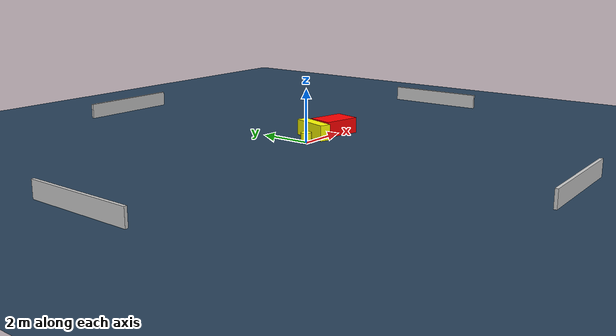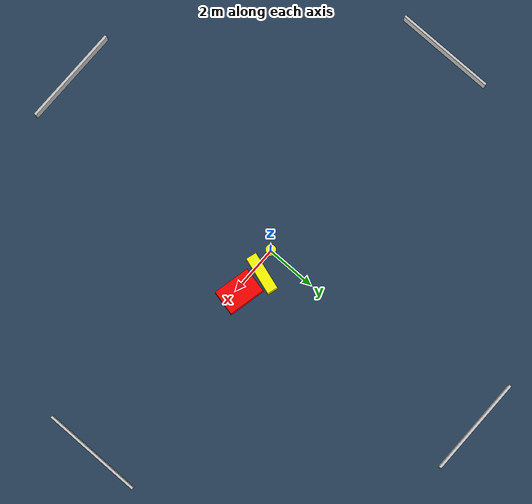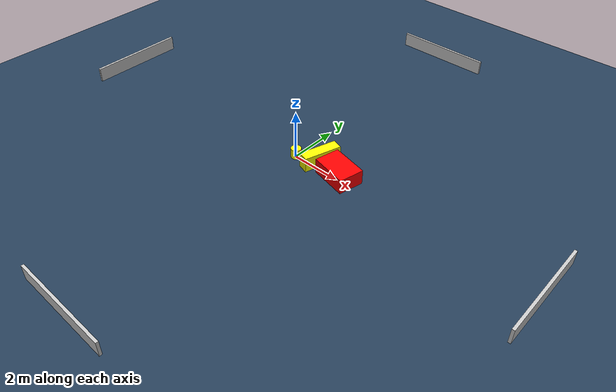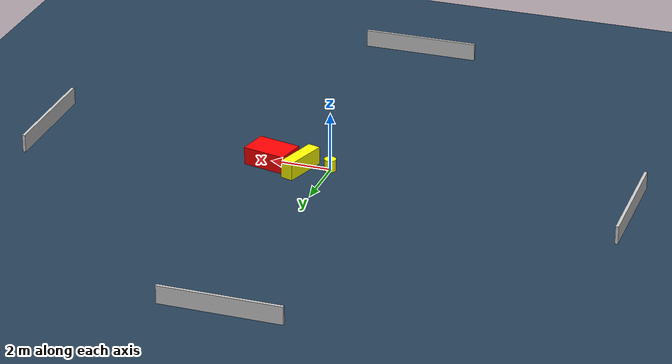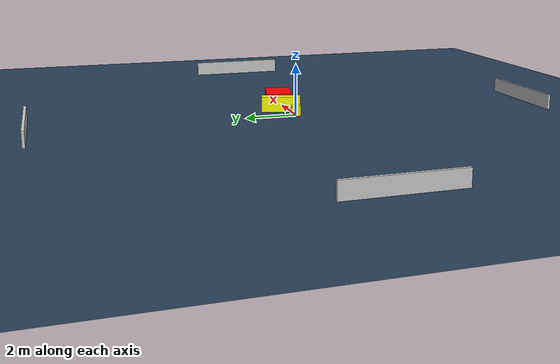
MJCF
<?xml version="1.0" ?>
<mujoco model="generated_environment">
  <option timestep="0.01" integrator="RK4" cone="elliptic"/>
  <default>
    <geom density="1"/>
  </default>
  <asset>
    <texture builtin="gradient" height="3072" name="skybox" rgb1="0.3 0.5 0.7" rgb2="0 0 0" type="skybox" width="512"/>
    <texture builtin="checker" height="300" name="groundplane" rgb1="0.2 0.3 0.4" rgb2="0.1 0.2 0.3" type="2d" width="300"/>
    <material name="groundplane" reflectance="0.2" texrepeat="5 5" texture="groundplane"/>
  </asset>
  <worldbody>
    <light dir="0 0 -1" directional="true" pos="0 0 1.5"/>
    <geom condim="3" friction="0.5 0.005 0.001" material="groundplane" name="floor" pos="0 0 0" size="0 0 0.05" type="plane"/>
    <body name="walls">
      <geom name="wall_1" condim="4" pos="-10.0 0.0 0.3" rgba="0.800000011920929 0.800000011920929 0.800000011920929 1.0" size="0.05 2.0 0.3" type="box"/>
      <geom name="wall_2" condim="4" pos="10.0 0.0 0.3" rgba="0.800000011920929 0.800000011920929 0.800000011920929 1.0" size="0.05 2.0 0.3" type="box"/>
      <geom name="wall_3" condim="4" pos="0.0 -10.0 0.3" rgba="0.800000011920929 0.800000011920929 0.800000011920929 1.0" size="2.0 0.05 0.3" type="box"/>
      <geom name="wall_4" condim="4" pos="0.0 10.0 0.3" rgba="0.800000011920929 0.800000011920929 0.800000011920929 1.0" size="2.0 0.05 0.3" type="box"/>
    </body>
    <body name="robot">
      <joint name="joint_x" type="slide" pos="0 0 0" axis="1 0 0"/>
      <joint name="joint_y" type="slide" pos="0 0 0" axis="0 1 0"/>
      <geom name="robot" type="cylinder" pos="0.0 0.0 0.2" size="0.2 0.2 0.0" mass="5.0" friction="1.0 0.005 0.0001" condim="4" rgba="1.0 1.0 0.0 1.0"/>
    </body>
    <body name="obstacle_1_movable">
      <geom name="obstacle_1_movable" condim="4" pos="0.9049929465694064 0.34408640021424025 0.3" euler="0 0 72.81338225046116" friction="0.0 0.005 0.001" rgba="1.0 1.0 0.0 1.0" size="0.7611252541642988 0.21317196456999618 0.3" type="box" mass="0.1"/>
      <joint type="free"/>
    </body>
    <body name="obstacle_2_static">
      <geom name="obstacle_2_static" condim="4" pos="1.9705351425102 0.15348063757893585 0.3" euler="0 0 77.52337597986352" friction="0.0 0.005 0.001" rgba="1.0 0.0 0.0 1.0" size="0.5021512245805172 0.7379003228788354 0.3" type="box"/>
    </body>
  </worldbody>
  <actuator>
    <motor name="actuator_x" joint="joint_x" gear="1" ctrlrange="-1 1"/>
    <motor name="actuator_y" joint="joint_y" gear="1" ctrlrange="-1 1"/>
  </actuator>
</mujoco>
